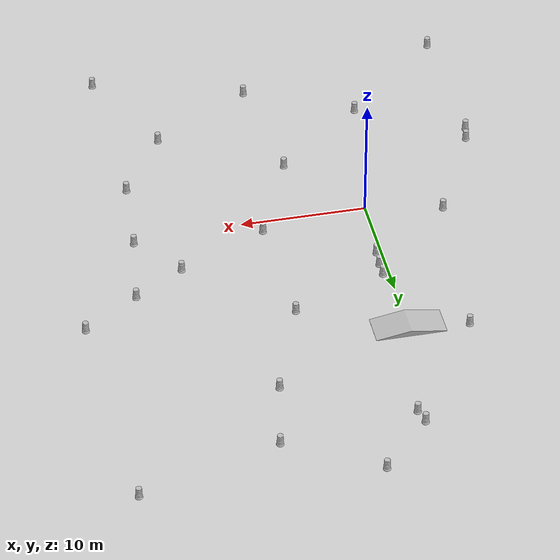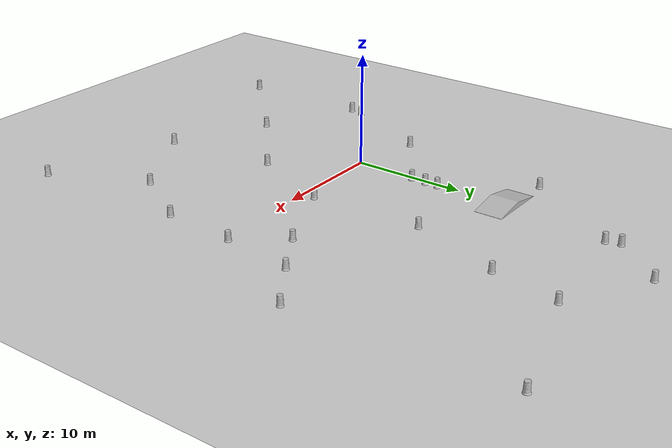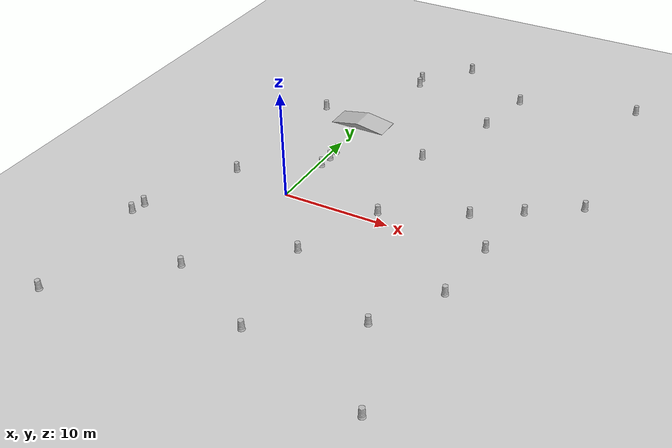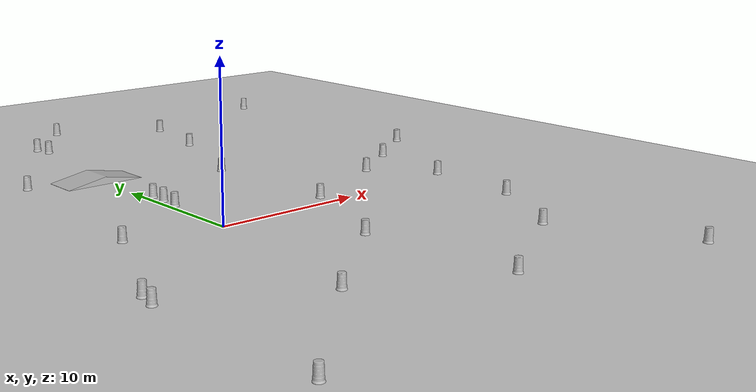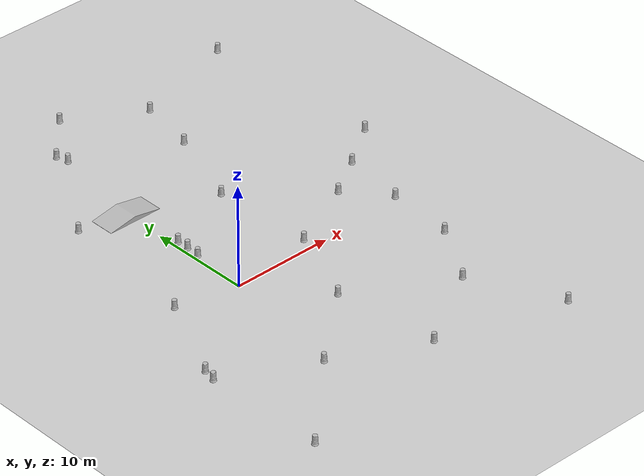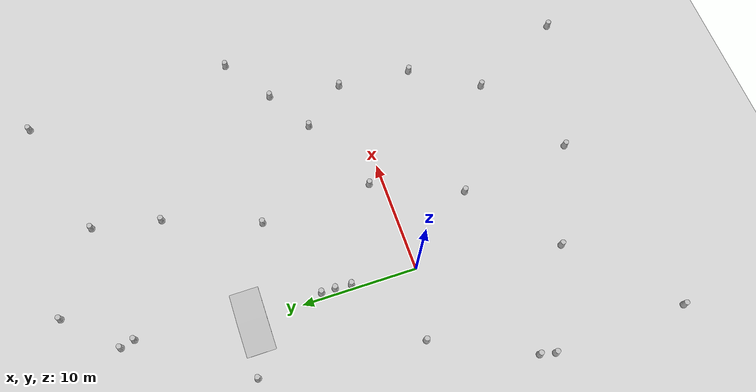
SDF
<?xml version="1.0" ?>
<sdf version="1.4">
  <world name="default">
    <scene>
      <sky>
      </sky>
    <ambient>1.0 1.0 1.0 1.0</ambient>
    <shadows>false</shadows>
    </scene>

    <!-- A global light source -->
    <include>
      <uri>model://urdf/models/sun</uri>
    </include>
    <!-- A ground plane -->
    <include>
      <uri>model://urdf/models/qualification</uri>
    </include> -->
    <!-- barrels -->
    <include>
      <uri>model://urdf/models/barrels_low</uri>
      <name>barrel_0</name> <!-- THE NAME MUST BE UNIQUE-->
      <pose>5.2 29.3 0 0 -0 0</pose>
    </include>
    <include>
      <uri>model://urdf/models/barrels_low</uri>
      <name>barrel_1</name> <!-- THE NAME MUST BE UNIQUE-->
      <pose>12.2 25.2 0 0 -0 0</pose>
    </include>
    <include>
      <uri>model://urdf/models/barrels_low</uri>
      <name>barrel_2</name> <!-- THE NAME MUST BE UNIQUE-->
      <pose>18.6657 0.614863 0 0 -0 0</pose>
    </include>
    <include>
      <uri>model://urdf/models/barrels_low</uri>
      <name>barrel_3</name> <!-- THE NAME MUST BE UNIQUE-->
      <pose>23.2 28.5 0 0 -0 0</pose>
    </include>
    <include>
      <uri>model://urdf/models/barrels_low</uri>
      <name>barrel_4</name> <!-- THE NAME MUST BE UNIQUE-->
      <pose>11 19.3 0 0 -0 0</pose>
    </include>
    <include>
      <uri>model://urdf/models/barrels_low</uri>
      <name>barrel_5</name> <!-- THE NAME MUST BE UNIQUE-->
      <pose>1.6 23.9 0 0 -0 0</pose>
    </include>
    <include>
      <uri>model://urdf/models/barrels_low</uri>
      <name>barrel_6</name> <!-- THE NAME MUST BE UNIQUE-->
      <pose>-4.6 15.2 0 0 -0 0</pose>
    </include>
    <include>
      <uri>model://urdf/models/barrels_low</uri>
      <name>barrel_7</name> <!-- THE NAME MUST BE UNIQUE-->
      <pose>1.3 25.1 0 0 -0 0</pose>
    </include>
    <include>
      <uri>model://urdf/models/barrels_low</uri>
      <name>barrel_8</name> <!-- THE NAME MUST BE UNIQUE-->
      <pose>-10.3 -8.3 0 0 -0 0</pose>
    </include>
    <include>
      <uri>model://urdf/models/barrels_low</uri>
      <name>barrel_9</name> <!-- THE NAME MUST BE UNIQUE-->
      <pose>0.5, 7.0 0 0 -0 0</pose>
    </include>
    <include>
      <uri>model://urdf/models/barrels_low</uri>
      <name>barrel_10</name> <!-- THE NAME MUST BE UNIQUE-->
      <pose>0.5 8.2 0 0 -0 0</pose>
    </include>
    <include>
      <uri>model://urdf/models/barrels_low</uri>
      <name>barrel_11</name> <!-- THE NAME MUST BE UNIQUE-->
      <pose>8 11.1 0 0 -0 0</pose>
    </include>
    <include>
      <uri>model://urdf/models/barrels_low</uri>
      <name>barrel_12</name> <!-- THE NAME MUST BE UNIQUE-->
      <pose>8.5 1.2 0 0 -0 0</pose>
    </include>
    <include>
      <uri>model://urdf/models/barrels_low</uri>
      <name>barrel_13</name> <!-- THE NAME MUST BE UNIQUE-->
      <pose>15.6 4.5 0 0 -0 0</pose>
    </include>
    <include>
      <uri>model://urdf/models/barrels_low</uri>
      <name>barrel_14</name> <!-- THE NAME MUST BE UNIQUE-->
      <pose>-6 1.3 0 0 -0 0</pose>
    </include>
    <include>
      <uri>model://urdf/models/barrels_low</uri>
      <name>barrel_15</name> <!-- THE NAME MUST BE UNIQUE-->
      <pose>19.6 7.0 0 0 -0 0</pose>
    </include>
    <include>
      <uri>model://urdf/models/barrels_low</uri>
      <name>barrel_16</name> <!-- THE NAME MUST BE UNIQUE-->
      <pose>24.0 10.0 0 0 -0 0</pose>
    </include>
    <include>
      <uri>model://urdf/models/barrels_low</uri>
      <name>barrel_17</name> <!-- THE NAME MUST BE UNIQUE-->
      <pose>0.4 5.6 0 0 -0 0</pose>
    </include>
    <include>
      <uri>model://urdf/models/barrels_low</uri>
      <name>barrel_18</name> <!-- THE NAME MUST BE UNIQUE-->
      <pose>-10 -7 0 0 -0 0</pose>
    </include>
    <include>
      <uri>model://urdf/models/barrels_low</uri>
      <name>barrel_19</name> <!-- THE NAME MUST BE UNIQUE-->
      <pose>5.2 -6.5 0 0 -0 0</pose>
    </include>
    <include>
      <uri>model://urdf/models/barrels_low</uri>
      <name>barrel_20</name> <!-- THE NAME MUST BE UNIQUE-->
      <pose>14.5 -11.8 0 0 -0 0</pose>
    </include>
    <include>
      <uri>model://urdf/models/barrels_low</uri>
      <name>barrel_21</name> <!-- THE NAME MUST BE UNIQUE-->
      <pose>6.48 -16.6 0 0 -0 0</pose>
    </include>
    <include>
      <uri>model://urdf/models/barrels_low</uri>
      <name>barrel_22</name> <!-- THE NAME MUST BE UNIQUE-->
      <pose>-2.0 -12.5 0 0 -0 0</pose>
    </include>
    <include>
      <uri>model://urdf/models/barrels_low</uri>
      <name>barrel_23</name> <!-- THE NAME MUST BE UNIQUE-->
      <pose>18.5 -20.2 0 0 -0 0</pose>
    </include>
    <include>
      <uri>model://urdf/models/barrels_low</uri>
      <name>barrel_24</name> <!-- THE NAME MUST BE UNIQUE-->
      <pose>18.1 -6 0 0 -0 0</pose>
    </include>
    <include>
      <uri>model://urdf/models/barrels_low</uri>
      <name>barrel_25</name> <!-- THE NAME MUST BE UNIQUE-->
      <pose>-10 -20 0 0 -0 0</pose>
    </include>
    <!-- Ramp -->
    <include>
      <uri>model://urdf/models/ramp</uri>
      <name>ramp_1</name> <!-- THE NAME MUST BE UNIQUE-->
      <pose>0 14.35 0 0 -0 0</pose>
    </include>
    <physics type="simbody">
      <max_step_size>0.002</max_step_size>
      <real_time_update_rate>500</real_time_update_rate>
    </physics>
  </world>
</sdf>

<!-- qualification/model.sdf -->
<sdf version="1.5">
  <model name="grass_plane">
    <static>true</static>
    <link name="link">
      <collision name="collision">
        <geometry>
          <plane>
            <normal>0 0 1</normal>
            <size>100 100</size>
          </plane>
        </geometry>
        <surface>
          <friction>
            <ode>
              <mu>100</mu>
              <mu2>50</mu2>
            </ode>
          </friction>
        </surface>
      </collision>
      <visual name="visual">
        <cast_shadows>false</cast_shadows>
        <geometry>
          <plane>
            <normal>0 0 1</normal>
            <size>100 100</size>
          </plane>
        </geometry>
        <material>
          <script>
            <uri>model://urdf/qualification.material</uri>
            <name>Gazebo/Texture_qualification</name>
          </script>
        </material>
      </visual>
    </link>
  </model>
</sdf>

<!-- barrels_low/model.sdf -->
<sdf version="1.5">
  <model name='construction_barrel'>
    <link name='link'>
      <gravity>1</gravity>
      <inertial>
        <mass>500</mass>
        <inertia>
          <ixx>51.2096</ixx>
          <iyy>51.2096</iyy>
          <izz>25</izz>
          <ixy>0</ixy>
          <ixz>0</ixz>
          <iyz>0</iyz>
        </inertia>
      </inertial>
      <collision name='collision'>
        <pose> 0 0 0.5 0 0 0 </pose>
        <geometry>
           <cylinder>
             <radius>0.3</radius>
             <length>1.0</length>
           </cylinder>
        </geometry>
        <max_contacts>10</max_contacts>
        <surface>
          <contact>
            <ode/>
          </contact>
          <bounce/>
          <friction>
            <torsional>
              <ode/>
            </torsional>
            <ode/>
          </friction>
        </surface>
      </collision>
      <visual name='visual'>
        <geometry>
          <mesh>
            <uri>model://barrel/meshes/barrel.dae</uri>
            <scale>1 1 1</scale>
          </mesh>
        </geometry>
      </visual>
      <self_collide>0</self_collide>
      <kinematic>0</kinematic>
    </link>
  </model>
</sdf>

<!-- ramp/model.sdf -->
<sdf version="1.5">
  <model name='ramp'>
    <static>true</static>
    <link name='link'>
      <collision name='collision'>
        <geometry>
          <mesh>
            <uri>model://ramp/meshes/ramp.dae</uri>
            <scale>1 1 1</scale>
          </mesh>
        </geometry>
        <max_contacts>10</max_contacts>
        <surface>
          <friction>
            <ode>
              <mu>100</mu>
              <mu2>50</mu2>
            </ode>
          </friction>
        </surface>
      </collision>
      <visual name='visual'>
        <geometry>
          <mesh>
            <uri>model://ramp/meshes/ramp.dae</uri>
            <scale>1 1 1</scale>
          </mesh>
        </geometry>
      </visual>
      <self_collide>0</self_collide>
      <kinematic>0</kinematic>
    </link>
  </model>
</sdf>
